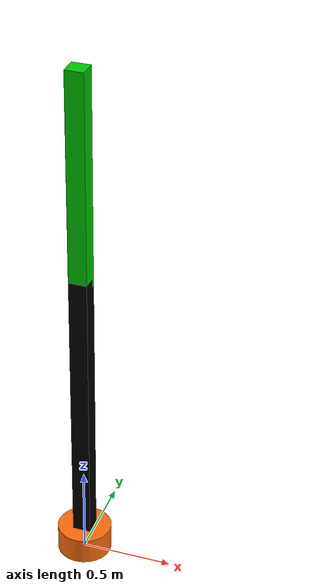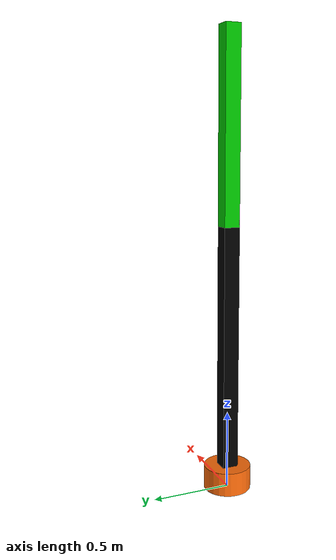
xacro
<?xml version="1.0"?>
<!-- Revolute 1 joint manipulator -->
<robot name="acrobat" xmlns:xacro="http://www.ros.org/wiki/xacro">

  <!-- Constants for robot dimensions -->
  <xacro:property name="mass" value="0.1" /> <!-- arbitrary value for mass -->
  <xacro:property name="width" value="0.1" /> <!-- Square dimensions (widthxwidth) of beams -->
  <xacro:property name="height1" value="1.6" /> <!-- Link 1: 0.1768 -->
  <xacro:property name="height2" value="1.2" /> <!-- Link 2: 0.1251-->
  <xacro:property name="axel_offset" value="0.05" /> <!-- Space btw top of beam and the each joint -->
  <xacro:property name="M_PI" value="3.141592653589793" />
  <xacro:property name="offset1" value="0.084" /> <!-- space between floor and link 1 -->
  <xacro:property name="base_height" value="0.15" />
  <!-- Tags needed for rviz to color model -->
  <xacro:include filename="$(find pybullet_ros)/common/test/urdf/acrobat_robot/materials.urdf.xacro" />

  <!-- robot base -->
  <link name="odom"/>

  <link name="base_link">
    <collision>
      <origin xyz="0 0 ${base_height/2}" rpy="0 0 0"/>
      <geometry>
        <cylinder length="${base_height}" radius="${base_height}"/>
      </geometry>
    </collision>

    <visual>
      <origin xyz="0 0 ${base_height/2}" rpy="0 0 0"/>
      <geometry>
        <cylinder length="${base_height}" radius="${base_height}"/>
      </geometry>
      <material name="orange"/>
    </visual>

    <inertial>
      <origin xyz="0 0 0" rpy="0 0 0"/>
      <mass value="${mass}"/>
      <inertia
          ixx="${mass / 12.0 * (width*width + height1*height1)}" ixy="0.0" ixz="0.0"
          iyy="${mass / 12.0 * (height1*height1 + width*width)}" iyz="0.0"
          izz="${mass / 12.0 * (width*width + width*width)}"/>
    </inertial>
  </link>

  <joint name="odom_to_base_link" type="revolute">
    <parent link="odom"/>
    <child link="base_link"/>
    <limit effort="1500.0" lower="${-M_PI}" upper="${M_PI}" velocity="100.0"/>
    <axis xyz="0 0 1"/>
    <origin xyz="0 0 0" rpy="0 0 0"/>
  </joint>

  <link name="static_link1"/>

  <joint name="base_link_to_static_link1" type="fixed">
    <parent link="base_link"/>
    <child link="static_link1"/>
    <origin xyz="0 0 ${base_height}" rpy="0 0 0"/>
  </joint>

  <!-- first Link -->
  <link name="link1">
    <collision>
      <origin xyz="0 0 ${height1/2}" rpy="0 0 0"/>
      <geometry>
        <box size="${width} ${width} ${height1-0.6}"/>
      </geometry>
    </collision>

    <visual>
      <origin xyz="0 0 ${height1/2}" rpy="0 0 0"/>
      <geometry>
        <box size="${width} ${width} ${height1}"/>
      </geometry>
      <material name="black"/>
    </visual>

    <inertial>
      <origin xyz="0 0 ${height1/2}" rpy="0 0 0"/>
      <mass value="${mass}"/>
      <inertia
          ixx="${mass / 12.0 * (width*width + height1*height1)}" ixy="0.0" ixz="0.0"
          iyy="${mass / 12.0 * (height1*height1 + width*width)}" iyz="0.0"
          izz="${mass / 12.0 * (width*width + width*width)}"/>
    </inertial>
  </link>

  <link name="link1_tip"/>

  <joint name="link1_to_link1_tip" type="fixed">
    <parent link="link1"/>
    <child link="link1_tip"/>
    <origin xyz="0 0 ${height1}" rpy="0 0 0"/>
  </joint>

  <joint name="link1_to_static_link1" type="revolute">
    <parent link="static_link1"/>
    <child link="link1"/>
    <limit effort="1500.0" lower="${-M_PI}" upper="${M_PI}" velocity="100.0"/>
    <axis xyz="0 1 0"/>
    <origin xyz="0 0 0" rpy="0 0 0"/>
  </joint>

  <!-- second link -->
  <link name="link2">
    <collision>
      <origin xyz="0 0 ${height2/2 - axel_offset}" rpy="0 0 0"/>
      <geometry>
        <box size="${width} ${width} ${height2}"/>
      </geometry>
    </collision>

    <visual>
      <origin xyz="0 0 ${height2/2 - axel_offset}" rpy="0 0 0"/>
      <geometry>
        <box size="${width} ${width} ${height2}"/>
      </geometry>
      <material name="green"/>
    </visual>

    <inertial>
      <origin xyz="0 0 ${height2/2 - axel_offset}" rpy="0 0 0"/>
      <mass value="${mass}"/>
      <inertia
          ixx="${mass / 12.0 * (width*width + height2*height2)}" ixy="0.0" ixz="0.0"
          iyy="${mass / 12.0 * (height2*height2 + width*width)}" iyz="0.0"
          izz="${mass / 12.0 * (width*width + width*width)}"/>
    </inertial>
  </link>

  <joint name="link1_tip_to_link2" type="revolute">
    <parent link="link1_tip"/>
    <child link="link2"/>
    <limit effort="1500.0" lower="${-M_PI}" upper="${M_PI}" velocity="100.0"/>
    <axis xyz="0 1 0"/>
    <origin xyz="0 0 0" rpy="0 0 0"/>
  </joint>

  <link name="tip_link"/>

  <joint name="link2_to_tip_link" type="fixed">
    <parent link="link2"/>
    <child link="tip_link"/>
    <origin xyz="0 0 ${height2 - width / 2.0}" rpy="0 0 0"/>
  </joint>

</robot>

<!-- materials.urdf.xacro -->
<robot>

    <material name="black">
        <color rgba="0.0 0.0 0.0 1.0"/>
    </material>

    <material name="blue">
        <color rgba="0.0 0.0 0.8 1.0"/>
    </material>

    <material name="green">
        <color rgba="0.0 0.8 0.0 1.0"/>
    </material>

    <material name="grey">
        <color rgba="0.2 0.2 0.2 1.0"/>
    </material>

    <material name="orange">
        <color rgba="${255/255} ${108/255} ${10/255} 1.0"/>
    </material>

    <material name="brown">
        <color rgba="${222/255} ${207/255} ${195/255} 1.0"/>
    </material>

    <material name="red">
        <color rgba="0.8 0.0 0.0 1.0"/>
    </material>

    <material name="white">
        <color rgba="1.0 1.0 1.0 1.0"/>
    </material>

</robot>
